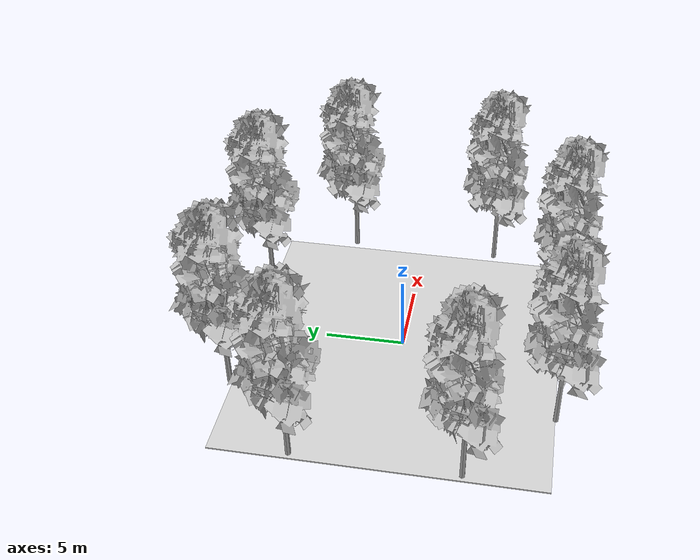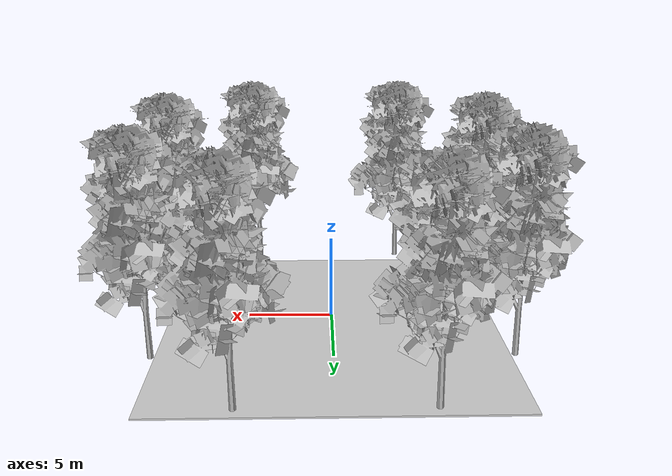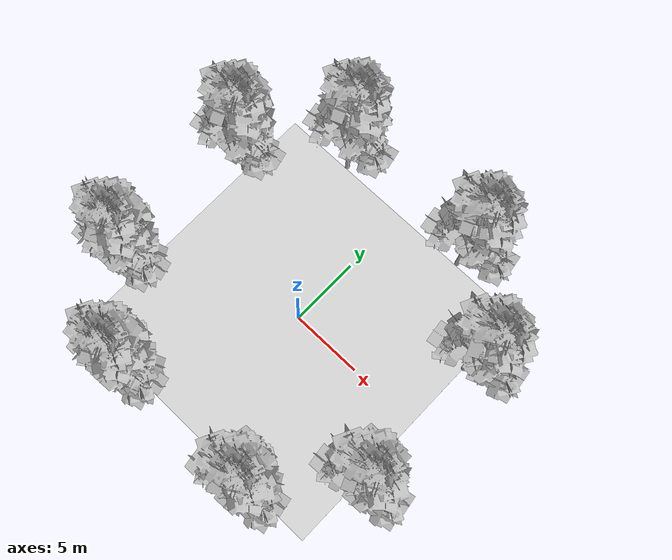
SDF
<sdf version="1.8">
 <world name="trees">
  <physics name="1ms" type="ignored">
   <max_step_size>0.001</max_step_size>
   <real_time_factor>1.0</real_time_factor>
  </physics>
  <plugin filename="libignition-gazebo-physics-system.so" name="ignition::gazebo::systems::Physics"/>
  <plugin filename="libignition-gazebo-sensors-system.so" name="ignition::gazebo::systems::Sensors">
   <render_engine>ogre2</render_engine>
  </plugin>
  <plugin filename="libignition-gazebo-scene-broadcaster-system.so" name="ignition::gazebo::systems::SceneBroadcaster"/>
  <plugin filename="ignition-gazebo-user-commands-system" name="ignition::gazebo::systems::UserCommands"/>
  <light type="directional" name="sun">
   <pose>0 0 10 0 0 0</pose>
   <diffuse>0.8 0.8 0.8 1</diffuse>
   <specular>0.2 0.2 0.2 1</specular>
   <attenuation>
    <range>1000</range>
    <constant>0.9</constant>
    <linear>0.01</linear>
    <quadratic>0.001</quadratic>
   </attenuation>
   <direction>-0.5 0.1 -0.9</direction>
  </light>
  <model name="ground_plane">
   <static>true</static>
   <link name="link">
    <pose>0 0 -0.5 0 0 0</pose>
    <collision name="collision"><geometry><box><size>50 50 0.1</size></box></geometry></collision>
    <visual name="visual">
     <geometry><box><size>20 20 0.1</size></box></geometry>
     <material>
      <ambient>0.8 0.8 0.8 1</ambient>
      <diffuse>0.8 0.8 0.8 1</diffuse>
      <specular>0.8 0.8 0.8 1</specular>
     </material>
    </visual>
   </link>
  </model>
  <include><uri>model://tree_0</uri><name>tree_0</name><pose>-5 10 0 0 -0 0</pose></include>
  <include><uri>model://tree_0</uri><name>tree_1</name><pose>5 10 0 0 -0 0</pose></include>
  <include><uri>model://tree_0</uri><name>tree_2</name><pose>10 -5 0 0 -0 0</pose></include>
  <include><uri>model://tree_0</uri><name>tree_3</name><pose>10 5 0 0 -0 0</pose></include>
  <include><uri>model://tree_0</uri><name>tree_4</name><pose>-10 -5 0 0 -0 0</pose></include>
  <include><uri>model://tree_0</uri><name>tree_5</name><pose>-10 5 0 0 -0 0</pose></include>
  <include><uri>model://tree_0</uri><name>tree_6</name><pose>-5 -10 0 0 -0 0</pose></include>
  <include><uri>model://tree_0</uri><name>tree_7</name><pose>5 -10 0 0 -0 0</pose></include>
 </world>
</sdf>

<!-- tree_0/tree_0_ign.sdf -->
<sdf version='1.9'>
  <model name='tree_0'>
    <static>true</static>
    <frame name="tree_o" attached_to='branch_0'>
      <pose>0 0 0 0 0 0</pose>
    </frame>
    <link name='branch_0'>
      <inertial>
        <pose>-0.06241931606327641 1.350626340778748 1.923779702340026 0 0 0</pose>
        <mass>7</mass>
        <inertia>
          <ixx>18.455449295423151</ixx>
          <ixy>-0.5384581904470277</ixy>
          <ixz>0.044425222677061497</ixz>
          <iyy>14.900766032310321</iyy>
          <iyz>-4.2777394629844459</iyz>
          <izz>12.389009119758169</izz>
        </inertia>
      </inertial>
      <collision name='branch_0_collision_collision'>
        <pose>0 0 0.0 1.57 0 0</pose>
        <geometry>
          <mesh>
            <scale>0.001 0.001 0.001</scale>
            <uri>model://tree_0/meshes/tree_0.dae</uri>
          </mesh>
        </geometry>
      </collision>
      <visual name='branch_0_visual_visual'>
        <pose>0 0 0.0 1.57 0 0</pose>
        <geometry>
          <mesh>
            <scale>0.001 0.001 0.001</scale>
            <uri>model://tree_0/meshes/tree_0.dae</uri>
          </mesh>
        </geometry>
      </visual>
    </link>
  </model>
</sdf>
